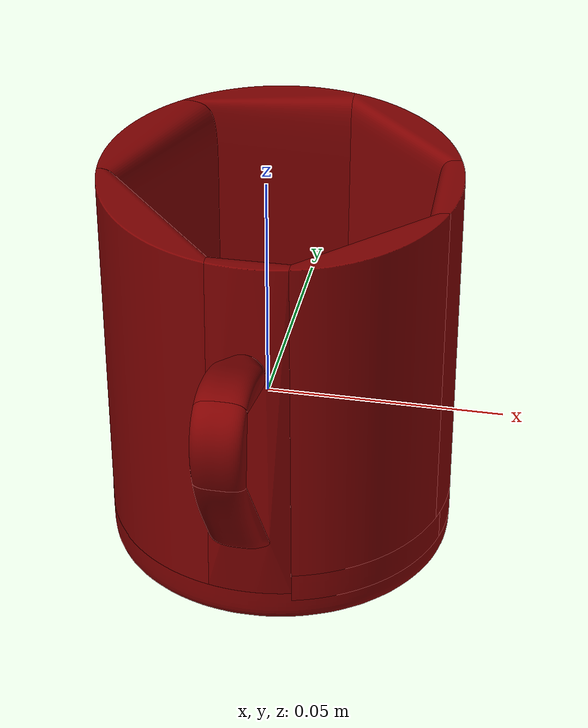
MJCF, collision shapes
<mujoco model="mug_11">
  <asset>
    <mesh file="visual/model_normalized_0.obj" name="model_normalized_0_vis" scale="0.105 0.105 0.105" refquat="0.7071067811865475 0.0 0.0 0.7071067811865476"/>
    <texture type="2d" name="image0" file="visual/image0.png"/>
    <material name="Material.314" texture="image0" specular="0.5" shininess="0.359999993"/>
    <mesh file="collision/collision_mesh_collision_0.obj" name="mug_collision_mesh_0" scale="0.105 0.105 0.105" refquat="0.7071067811865475 0.0 0.0 0.7071067811865476"/>
    <mesh file="collision/collision_mesh_collision_1.obj" name="mug_collision_mesh_1" scale="0.105 0.105 0.105" refquat="0.7071067811865475 0.0 0.0 0.7071067811865476"/>
    <mesh file="collision/collision_mesh_collision_2.obj" name="mug_collision_mesh_2" scale="0.105 0.105 0.105" refquat="0.7071067811865475 0.0 0.0 0.7071067811865476"/>
    <mesh file="collision/collision_mesh_collision_3.obj" name="mug_collision_mesh_3" scale="0.105 0.105 0.105" refquat="0.7071067811865475 0.0 0.0 0.7071067811865476"/>
    <mesh file="collision/collision_mesh_collision_4.obj" name="mug_collision_mesh_4" scale="0.105 0.105 0.105" refquat="0.7071067811865475 0.0 0.0 0.7071067811865476"/>
    <mesh file="collision/collision_mesh_collision_5.obj" name="mug_collision_mesh_5" scale="0.105 0.105 0.105" refquat="0.7071067811865475 0.0 0.0 0.7071067811865476"/>
    <mesh file="collision/collision_mesh_collision_6.obj" name="mug_collision_mesh_6" scale="0.105 0.105 0.105" refquat="0.7071067811865475 0.0 0.0 0.7071067811865476"/>
    <mesh file="collision/collision_mesh_collision_7.obj" name="mug_collision_mesh_7" scale="0.105 0.105 0.105" refquat="0.7071067811865475 0.0 0.0 0.7071067811865476"/>
    <mesh file="collision/collision_mesh_collision_8.obj" name="mug_collision_mesh_8" scale="0.105 0.105 0.105" refquat="0.7071067811865475 0.0 0.0 0.7071067811865476"/>
    <mesh file="collision/collision_mesh_collision_9.obj" name="mug_collision_mesh_9" scale="0.105 0.105 0.105" refquat="0.7071067811865475 0.0 0.0 0.7071067811865476"/>
    <mesh file="collision/collision_mesh_collision_10.obj" name="mug_collision_mesh_10" scale="0.105 0.105 0.105" refquat="0.7071067811865475 0.0 0.0 0.7071067811865476"/>
    <mesh file="collision/collision_mesh_collision_11.obj" name="mug_collision_mesh_11" scale="0.105 0.105 0.105" refquat="0.7071067811865475 0.0 0.0 0.7071067811865476"/>
    <mesh file="collision/collision_mesh_collision_12.obj" name="mug_collision_mesh_12" scale="0.105 0.105 0.105" refquat="0.7071067811865475 0.0 0.0 0.7071067811865476"/>
    <mesh file="collision/collision_mesh_collision_13.obj" name="mug_collision_mesh_13" scale="0.105 0.105 0.105" refquat="0.7071067811865475 0.0 0.0 0.7071067811865476"/>
    <mesh file="collision/collision_mesh_collision_14.obj" name="mug_collision_mesh_14" scale="0.105 0.105 0.105" refquat="0.7071067811865475 0.0 0.0 0.7071067811865476"/>
    <mesh file="collision/collision_mesh_collision_15.obj" name="mug_collision_mesh_15" scale="0.105 0.105 0.105" refquat="0.7071067811865475 0.0 0.0 0.7071067811865476"/>
  </asset>
  <default>
    <default class="region">
      <geom group="1" conaffinity="0" contype="0" rgba="0 1 0 0"/>
    </default>
    <default class="collision">
      <geom group="0" rgba="0.5 0 0 0.5" density="1000.0"/>
    </default>
  </default>
  <worldbody>
    <body>
      <body name="object">
        <geom solimp="0.998 0.998 0.001" solref="0.001 1" density="100" friction="0.95 0.3 0.1" type="mesh" mesh="model_normalized_0_vis" conaffinity="0" contype="0" group="1" material="Material.314"/>
        <geom class="region" name="reg_bbox" type="box" pos="5.554500000019836e-07 0.0 1.2421499999989982e-06" size="0.03846722354999999 0.0525 0.04468792125"/>
        <geom mesh="mug_collision_mesh_0" type="mesh" class="collision"/>
        <geom mesh="mug_collision_mesh_1" type="mesh" class="collision"/>
        <geom mesh="mug_collision_mesh_2" type="mesh" class="collision"/>
        <geom mesh="mug_collision_mesh_3" type="mesh" class="collision"/>
        <geom mesh="mug_collision_mesh_4" type="mesh" class="collision"/>
        <geom mesh="mug_collision_mesh_5" type="mesh" class="collision"/>
        <geom mesh="mug_collision_mesh_6" type="mesh" class="collision"/>
        <geom mesh="mug_collision_mesh_7" type="mesh" class="collision"/>
        <geom mesh="mug_collision_mesh_8" type="mesh" class="collision"/>
        <geom mesh="mug_collision_mesh_9" type="mesh" class="collision"/>
        <geom mesh="mug_collision_mesh_10" type="mesh" class="collision"/>
        <geom mesh="mug_collision_mesh_11" type="mesh" class="collision"/>
        <geom mesh="mug_collision_mesh_12" type="mesh" class="collision"/>
        <geom mesh="mug_collision_mesh_13" type="mesh" class="collision"/>
        <geom mesh="mug_collision_mesh_14" type="mesh" class="collision"/>
        <geom mesh="mug_collision_mesh_15" type="mesh" class="collision"/>
        <geom rgba="0 0 0 0" size="0.036 0.035" pos="0 0.015 0.0" type="cylinder" name="liquid" class="region"/>
        <geom rgba="0 0 0 0 " size="0.033 0.037" pos="0 0.014 0.006" type="cylinder" name="reg_int" class="region"/>
      </body>
    </body>
  </worldbody>
</mujoco>
